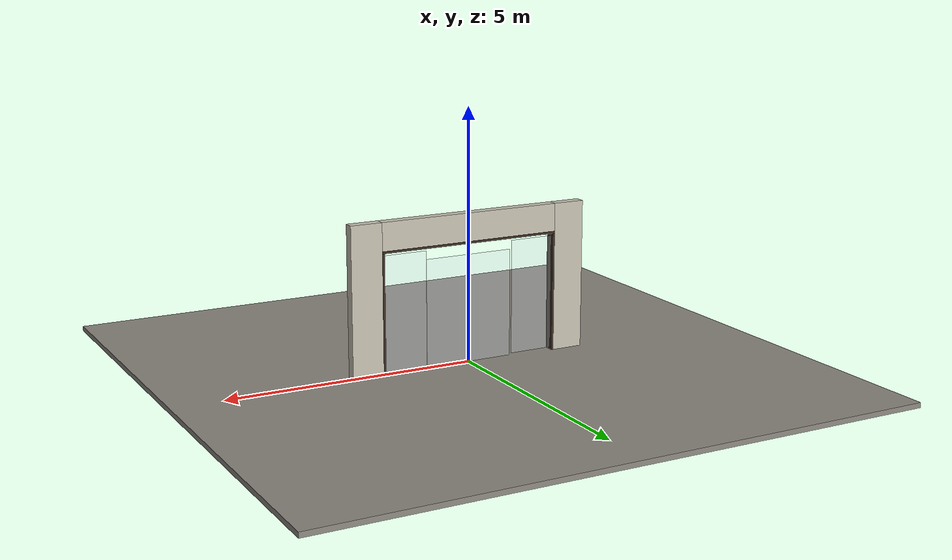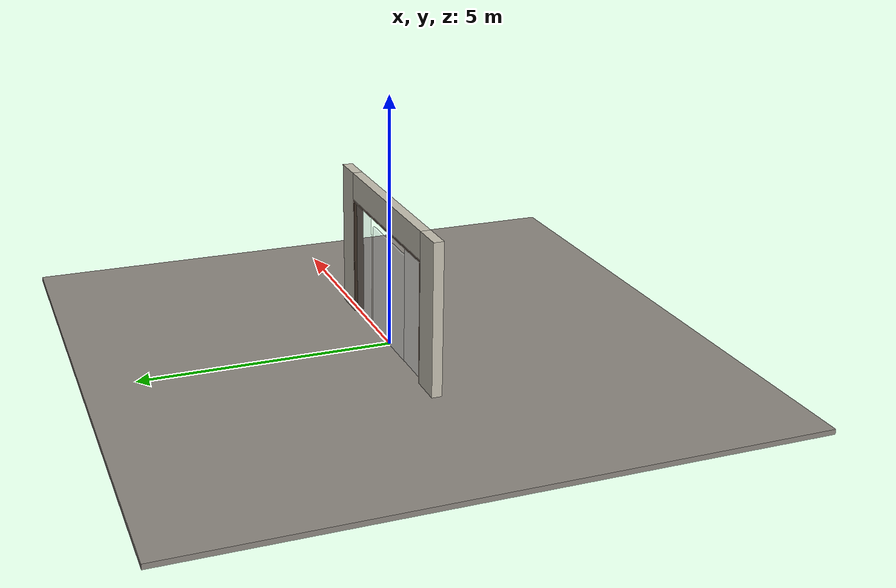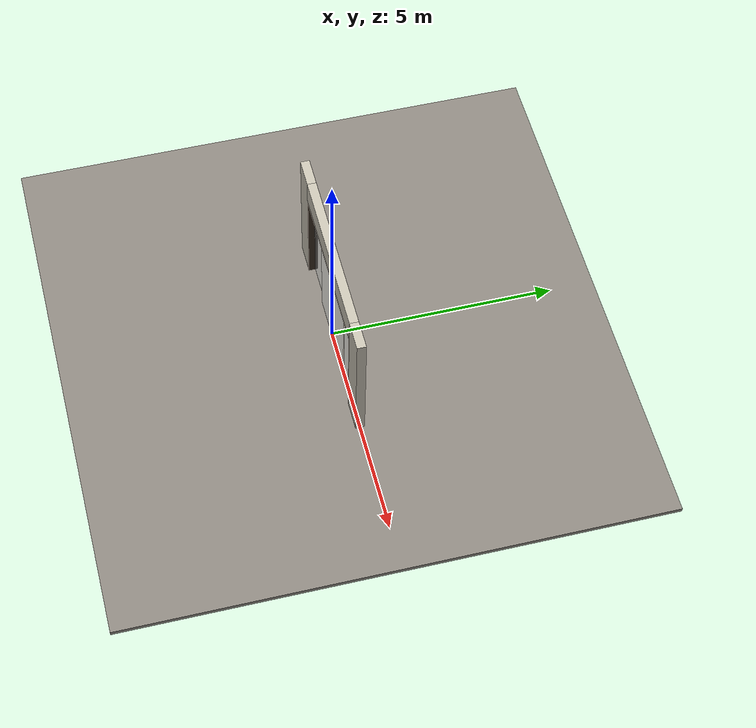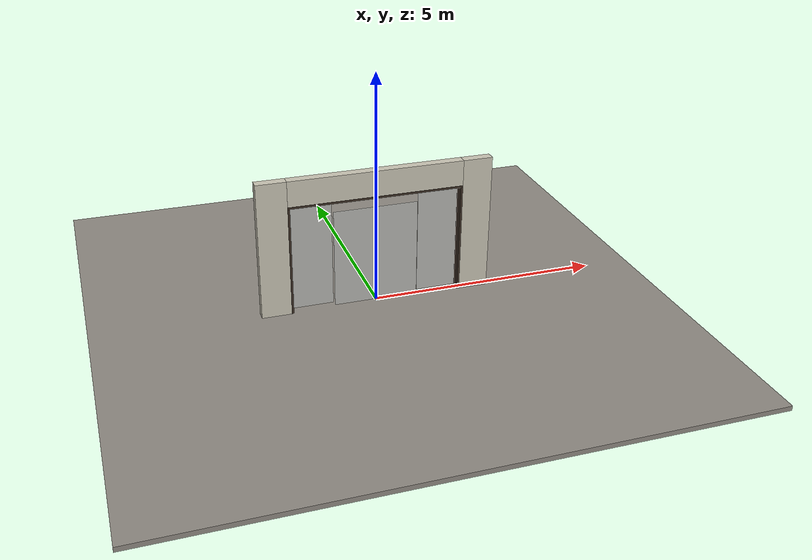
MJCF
<?xml version="1.0" ?>
<mujoco model="db0611_automatic_sliding_minimal">
  <compiler angle="radian" meshdir="../../hardware" texturedir="../../textures" autolimits="true" inertiafromgeom="false"/>
  <option timestep="0.002" integrator="implicitfast" cone="elliptic" impratio="10" noslip_iterations="3">
    <flag multiccd="enable"/>
  </option>
  <size memory="16M"/>
  <default>
    <geom condim="4" solref="0.005 1" solimp="0.95 0.99 0.001"/>
    <joint solreflimit="0.005 1" solimplimit="0.95 0.99 0.001"/>
    <tendon solreflimit="0.005 1"/>
    <equality solref="0.002 1"/>
  </default>
  <visual>
    <headlight ambient="0.4 0.4 0.4" diffuse="0.7 0.7 0.7" specular="0.2 0.2 0.2"/>
    <quality shadowsize="4096"/>
    <map znear="0.01" zfar="60"/>
  </visual>
  <asset>
    <material name="mat_floor" rgba="0.55 0.53 0.5 1" specular="0.2" shininess="0.15" reflectance="0"/>
    <material name="mat_wall" rgba="0.78 0.76 0.7 1" specular="0.2" shininess="0.1" reflectance="0"/>
    <material name="mat_frame" rgba="0.22 0.17 0.13 1" specular="0.8" shininess="0.6" reflectance="0.4"/>
    <material name="mat_track" rgba="0.8 0.81 0.83 1" specular="0.8" shininess="0.6" reflectance="0.4"/>
    <material name="mat_fixed_glass" rgba="0.85 0.92 0.95 0.25" specular="0.2" shininess="0.95" reflectance="0.1"/>
    <material name="mat_leaf_a" rgba="0.85 0.92 0.95 0.25" specular="0.2" shininess="0.95" reflectance="0.1"/>
    <material name="mat_glass_leaf" rgba="0.85 0.92 0.95 0.25" specular="0.2" shininess="0.95" reflectance="0.1"/>
    <material name="mat_patch" rgba="0.75 0.76 0.77 1" specular="0.8" shininess="0.65" reflectance="0.4"/>
    <material name="mat_roller" rgba="0.65 0.66 0.68 1" specular="0.74" shininess="0.5" reflectance="0.36"/>
    <material name="mat_leaf_b" rgba="0.85 0.92 0.95 0.25" specular="0.2" shininess="0.95" reflectance="0.1"/>
    <material name="mat_sign" rgba="0.75 0.76 0.77 1" specular="0.8" shininess="0.65" reflectance="0.4"/>
    <material name="mat_wallreader" rgba="0.05 0.05 0.05 1" specular="0.38" shininess="0.3" reflectance="0.12"/>
    <material name="mat_hook" rgba="0.75 0.76 0.77 1" specular="0.8" shininess="0.65" reflectance="0.4"/>
    <texture name="skybox" type="skybox" builtin="gradient" rgb1="0.6 0.7 0.85" rgb2="0.9 0.92 0.95" width="256" height="256"/>
  </asset>
  <worldbody>
    <light name="sun" pos="1.5 -2.5 4" dir="-0.3 0.5 -0.8" directional="true" diffuse="0.8 0.8 0.8" specular="0.3 0.3 0.3" castshadow="true"/>
    <light name="fill" pos="-1.5 2.5 3" dir="0.3 -0.5 -0.7" directional="true" diffuse="0.35 0.35 0.4" castshadow="false"/>
    <camera name="robot_view" pos="0 -4.0375 2.3225" xyaxes="1 0 0 0 0.26963 0.962964" fovy="52"/>
    <camera name="far_view" pos="0 4.0375 2.3225" xyaxes="-1 0 0 0 -0.26963 0.962964" fovy="52"/>
    <camera name="iso" pos="3.0685 -3.3915 2.9685" xyaxes="0.741536 0.670913 0 -0.242917 0.268487 0.932151" fovy="46"/>
    <camera name="detail_handle" pos="0.48 -0.8 1.28" xyaxes="0.97561 0.219512 0 -0.070934 0.315262 0.94635" fovy="38"/>
    <geom name="floor" type="box" size="6 6 0.05" pos="0 0 -0.05" material="mat_floor" group="0" contype="1" conaffinity="1" friction="0.8 0.005 0.0001" density="2400"/>
    <geom name="wall_left" type="box" size="0.3175 0.1 1.492" pos="-2.1825 0 1.492" material="mat_wall" group="0" contype="1" conaffinity="1" friction="0.6 0.005 0.0001" density="800"/>
    <geom name="wall_right" type="box" size="0.3175 0.1 1.492" pos="2.1825 0 1.492" material="mat_wall" group="0" contype="1" conaffinity="1" friction="0.6 0.005 0.0001" density="800"/>
    <geom name="wall_header" type="box" size="1.865 0.1 0.2775" pos="0 0 2.7065" material="mat_wall" group="0" contype="1" conaffinity="1" friction="0.6 0.005 0.0001" density="800"/>
    <geom name="jamb_l" type="box" size="0.0225 0.1 1.192" pos="-1.8425 0 1.192" material="mat_frame" group="0" contype="1" conaffinity="1" friction="0.6 0.005 0.0001" density="300"/>
    <geom name="jamb_r" type="box" size="0.0225 0.1 1.192" pos="1.8425 0 1.192" material="mat_frame" group="0" contype="1" conaffinity="1" friction="0.6 0.005 0.0001" density="300"/>
    <geom name="jamb_head" type="box" size="1.865 0.1 0.0225" pos="0 0 2.4065" material="mat_frame" group="0" contype="1" conaffinity="1" friction="0.6 0.005 0.0001" density="300"/>
    <geom name="sidelite_l" type="box" size="0.435 0.003 1.142" pos="-1.365 0.042 1.192" material="mat_fixed_glass" group="0" contype="1" conaffinity="1" friction="0.6 0.005 0.0001" density="2500"/>
    <geom name="sidelite_r" type="box" size="0.435 0.003 1.142" pos="1.365 0.042 1.192" material="mat_fixed_glass" group="0" contype="1" conaffinity="1" friction="0.6 0.005 0.0001" density="2500"/>
    <site name="approach_point" pos="0 -1.5 0" quat="1 0 0 0" size="0.05" rgba="0.2 0.9 0.2 0.5" group="4"/>
    <site name="goal_point" pos="0 1.5 0" quat="1 0 0 0" size="0.05" rgba="0.2 0.9 0.2 0.5" group="4"/>
    <site name="door_plane_center" pos="0 0 1.192" quat="1 0 0 0" size="0.02" rgba="0.2 0.9 0.2 0.5" group="4"/>
    <body name="leaf_a" pos="-0.45 0 0">
      <inertial pos="0 0 1.079" mass="66.89681" quat="-0.5 0.5 0.5 0.5" diaginertia="4.526823522 25.398383 29.902628848"/>
      <joint name="leaf_a_slide" type="slide" axis="-1 0 0" limited="true" range="0 0.88" damping="5.375535" frictionloss="39.723228" armature="0.5"/>
      <geom name="leaf_a_glass" type="box" size="0.45 0.0225 1.067" pos="0 0 1.079" material="mat_glass_leaf" group="0" contype="1" conaffinity="1" friction="0.4 0.005 0.0001" density="1"/>
      <site name="leaf_a_edge_mid" pos="0.45 0 1.079" quat="1 0 0 0" size="0.02" rgba="0.2 0.9 0.2 0.5" group="4"/>
    </body>
    <body name="leaf_b" pos="0.45 0 0">
      <inertial pos="0 0 1.079" mass="66.87459" quat="-0.5 0.5 0.5 0.5" diaginertia="4.525319902 25.389946729 29.892696457"/>
      <joint name="leaf_b_slide" type="slide" axis="1 0 0" limited="true" range="0 0.88" damping="5.375535" frictionloss="39.723228" armature="0.5"/>
      <geom name="leaf_b_glass" type="box" size="0.45 0.0225 1.067" pos="0 0 1.079" material="mat_glass_leaf" group="0" contype="1" conaffinity="1" friction="0.4 0.005 0.0001" density="1"/>
      <site name="leaf_b_edge_mid" pos="-0.45 0 1.079" quat="1 0 0 0" size="0.02" rgba="0.2 0.9 0.2 0.5" group="4"/>
    </body>
  </worldbody>
  <equality>
    <joint name="center_couple" joint1="leaf_b_slide" joint2="leaf_a_slide" polycoef="0 1 0 0 0" active="true"/>
  </equality>
  <actuator>
    <position name="leaf_a_drive" joint="leaf_a_slide" kp="400" kv="60" forcerange="-150 150" ctrlrange="0 0.88"/>
    <position name="leaf_b_drive" joint="leaf_b_slide" kp="400" kv="60" forcerange="-150 150" ctrlrange="0 0.88"/>
  </actuator>
  <sensor>
    <jointpos name="leaf_a_slide_pos" joint="leaf_a_slide"/>
    <jointvel name="leaf_a_slide_vel" joint="leaf_a_slide"/>
    <jointpos name="leaf_b_slide_pos" joint="leaf_b_slide"/>
    <jointvel name="leaf_b_slide_vel" joint="leaf_b_slide"/>
  </sensor>
</mujoco>
